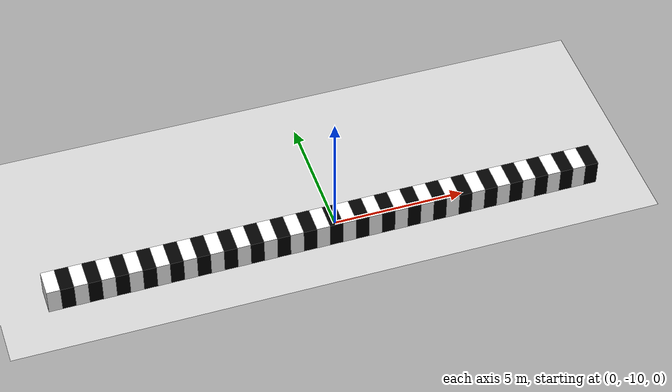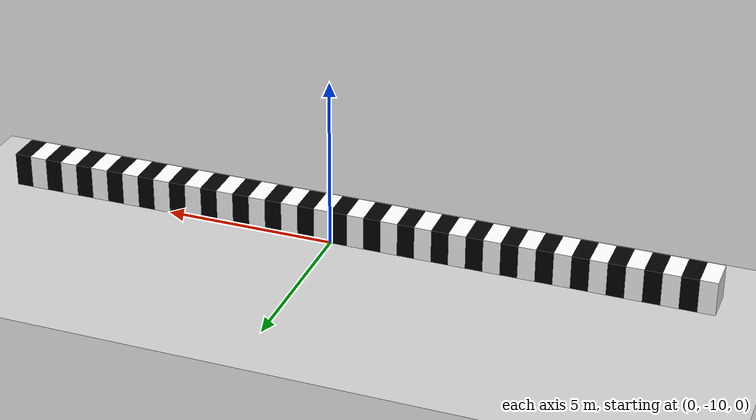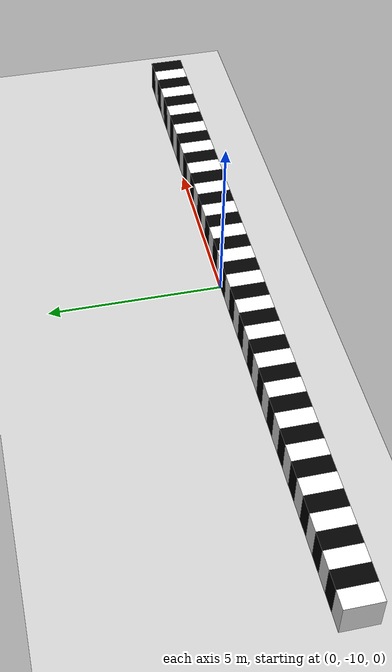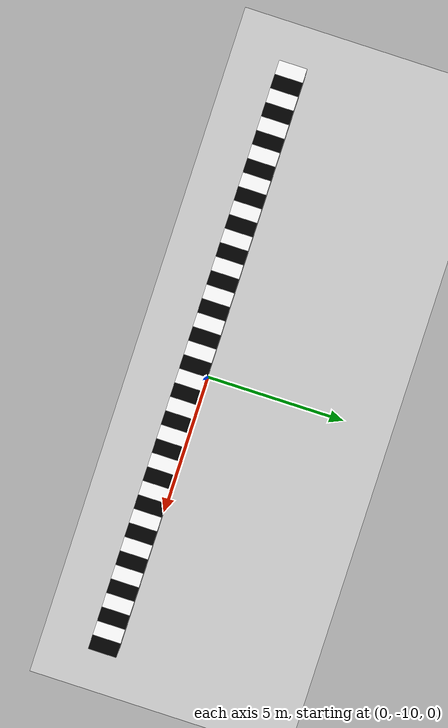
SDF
<sdf version="1.9">
 <world name="default">
  <model name="ground_plane">
   <static>true</static>
   <link name="link">
    <collision name="collision">
     <geometry><plane><normal>0 0 1</normal><size>100 100</size></plane></geometry>
    </collision>
    <visual name="visual">
     <geometry><plane><normal>0 0 1</normal><size>100 100</size></plane></geometry>
     <material>
      <ambient>0.8 0.8 0.8 1</ambient>
      <diffuse>0.8 0.8 0.8 1</diffuse>
      <specular>0.8 0.8 0.8 1</specular>
     </material>
    </visual>
   </link>
  </model>
  <model name="wall2">
   <static>true</static>
   <link name="link">
    <collision name="collision1">
     <geometry>
      <polyline>
       <point>10 -10</point>
       <point>10 -11</point>
       <point>-11 -11</point>
       <point>-11 -10</point>
       <height>1</height>
      </polyline>
     </geometry>
    </collision>
    <visual name="s1">
     <pose>-10.75 -10.5 0.5 0 0 0</pose>
     <geometry><box><size>0.5 1 1</size></box></geometry>
     <material><ambient>1 1 1 1</ambient><diffuse>1 1 1 1</diffuse></material>
    </visual>
    <visual name="s2">
     <pose>-10.25 -10.5 0.5 0 0 0</pose>
     <geometry><box><size>0.5 1 1</size></box></geometry>
     <material><ambient>0 0 0 1</ambient><diffuse>0 0 0 1</diffuse></material>
    </visual>
    <visual name="s3">
     <pose>-9.75 -10.5 0.5 0 0 0</pose>
     <geometry><box><size>0.5 1 1</size></box></geometry>
     <material><ambient>1 1 1 1</ambient><diffuse>1 1 1 1</diffuse></material>
    </visual>
    <visual name="s4">
     <pose>-9.25 -10.5 0.5 0 0 0</pose>
     <geometry><box><size>0.5 1 1</size></box></geometry>
     <material><ambient>0 0 0 1</ambient><diffuse>0 0 0 1</diffuse></material>
    </visual>
    <visual name="s5">
     <pose>-8.75 -10.5 0.5 0 0 0</pose>
     <geometry><box><size>0.5 1 1</size></box></geometry>
     <material><ambient>1 1 1 1</ambient><diffuse>1 1 1 1</diffuse></material>
    </visual>
    <visual name="s6">
     <pose>-8.25 -10.5 0.5 0 0 0</pose>
     <geometry><box><size>0.5 1 1</size></box></geometry>
     <material><ambient>0 0 0 1</ambient><diffuse>0 0 0 1</diffuse></material>
    </visual>
    <visual name="s7">
     <pose>-7.75 -10.5 0.5 0 0 0</pose>
     <geometry><box><size>0.5 1 1</size></box></geometry>
     <material><ambient>1 1 1 1</ambient><diffuse>1 1 1 1</diffuse></material>
    </visual>
    <visual name="s8">
     <pose>-7.25 -10.5 0.5 0 0 0</pose>
     <geometry><box><size>0.5 1 1</size></box></geometry>
     <material><ambient>0 0 0 1</ambient><diffuse>0 0 0 1</diffuse></material>
    </visual>
    <visual name="s9">
     <pose>-6.75 -10.5 0.5 0 0 0</pose>
     <geometry><box><size>0.5 1 1</size></box></geometry>
     <material><ambient>1 1 1 1</ambient><diffuse>1 1 1 1</diffuse></material>
    </visual>
    <visual name="s10">
     <pose>-6.25 -10.5 0.5 0 0 0</pose>
     <geometry><box><size>0.5 1 1</size></box></geometry>
     <material><ambient>0 0 0 1</ambient><diffuse>0 0 0 1</diffuse></material>
    </visual>
    <visual name="s11">
     <pose>-5.75 -10.5 0.5 0 0 0</pose>
     <geometry><box><size>0.5 1 1</size></box></geometry>
     <material><ambient>1 1 1 1</ambient><diffuse>1 1 1 1</diffuse></material>
    </visual>
    <visual name="s12">
     <pose>-5.25 -10.5 0.5 0 0 0</pose>
     <geometry><box><size>0.5 1 1</size></box></geometry>
     <material><ambient>0 0 0 1</ambient><diffuse>0 0 0 1</diffuse></material>
    </visual>
    <visual name="s13">
     <pose>-4.75 -10.5 0.5 0 0 0</pose>
     <geometry><box><size>0.5 1 1</size></box></geometry>
     <material><ambient>1 1 1 1</ambient><diffuse>1 1 1 1</diffuse></material>
    </visual>
    <visual name="s14">
     <pose>-4.25 -10.5 0.5 0 0 0</pose>
     <geometry><box><size>0.5 1 1</size></box></geometry>
     <material><ambient>0 0 0 1</ambient><diffuse>0 0 0 1</diffuse></material>
    </visual>
    <visual name="s15">
     <pose>-3.75 -10.5 0.5 0 0 0</pose>
     <geometry><box><size>0.5 1 1</size></box></geometry>
     <material><ambient>1 1 1 1</ambient><diffuse>1 1 1 1</diffuse></material>
    </visual>
    <visual name="s16">
     <pose>-3.25 -10.5 0.5 0 0 0</pose>
     <geometry><box><size>0.5 1 1</size></box></geometry>
     <material><ambient>0 0 0 1</ambient><diffuse>0 0 0 1</diffuse></material>
    </visual>
    <visual name="s17">
     <pose>-2.75 -10.5 0.5 0 0 0</pose>
     <geometry><box><size>0.5 1 1</size></box></geometry>
     <material><ambient>1 1 1 1</ambient><diffuse>1 1 1 1</diffuse></material>
    </visual>
    <visual name="s18">
     <pose>-2.25 -10.5 0.5 0 0 0</pose>
     <geometry><box><size>0.5 1 1</size></box></geometry>
     <material><ambient>0 0 0 1</ambient><diffuse>0 0 0 1</diffuse></material>
    </visual>
    <visual name="s19">
     <pose>-1.75 -10.5 0.5 0 0 0</pose>
     <geometry><box><size>0.5 1 1</size></box></geometry>
     <material><ambient>1 1 1 1</ambient><diffuse>1 1 1 1</diffuse></material>
    </visual>
    <visual name="s20">
     <pose>-1.25 -10.5 0.5 0 0 0</pose>
     <geometry><box><size>0.5 1 1</size></box></geometry>
     <material><ambient>0 0 0 1</ambient><diffuse>0 0 0 1</diffuse></material>
    </visual>
    <visual name="s21">
     <pose>-0.75 -10.5 0.5 0 0 0</pose>
     <geometry><box><size>0.5 1 1</size></box></geometry>
     <material><ambient>1 1 1 1</ambient><diffuse>1 1 1 1</diffuse></material>
    </visual>
    <visual name="s22">
     <pose>-0.25 -10.5 0.5 0 0 0</pose>
     <geometry><box><size>0.5 1 1</size></box></geometry>
     <material><ambient>0 0 0 1</ambient><diffuse>0 0 0 1</diffuse></material>
    </visual>
    <visual name="s23">
     <pose>0.25 -10.5 0.5 0 0 0</pose>
     <geometry><box><size>0.5 1 1</size></box></geometry>
     <material><ambient>1 1 1 1</ambient><diffuse>1 1 1 1</diffuse></material>
    </visual>
    <visual name="s24">
     <pose>0.75 -10.5 0.5 0 0 0</pose>
     <geometry><box><size>0.5 1 1</size></box></geometry>
     <material><ambient>0 0 0 1</ambient><diffuse>0 0 0 1</diffuse></material>
    </visual>
    <visual name="s25">
     <pose>1.25 -10.5 0.5 0 0 0</pose>
     <geometry><box><size>0.5 1 1</size></box></geometry>
     <material><ambient>1 1 1 1</ambient><diffuse>1 1 1 1</diffuse></material>
    </visual>
    <visual name="s26">
     <pose>1.75 -10.5 0.5 0 0 0</pose>
     <geometry><box><size>0.5 1 1</size></box></geometry>
     <material><ambient>0 0 0 1</ambient><diffuse>0 0 0 1</diffuse></material>
    </visual>
    <visual name="s27">
     <pose>2.25 -10.5 0.5 0 0 0</pose>
     <geometry><box><size>0.5 1 1</size></box></geometry>
     <material><ambient>1 1 1 1</ambient><diffuse>1 1 1 1</diffuse></material>
    </visual>
    <visual name="s28">
     <pose>2.75 -10.5 0.5 0 0 0</pose>
     <geometry><box><size>0.5 1 1</size></box></geometry>
     <material><ambient>0 0 0 1</ambient><diffuse>0 0 0 1</diffuse></material>
    </visual>
    <visual name="s29">
     <pose>3.25 -10.5 0.5 0 0 0</pose>
     <geometry><box><size>0.5 1 1</size></box></geometry>
     <material><ambient>1 1 1 1</ambient><diffuse>1 1 1 1</diffuse></material>
    </visual>
    <visual name="s30">
     <pose>3.75 -10.5 0.5 0 0 0</pose>
     <geometry><box><size>0.5 1 1</size></box></geometry>
     <material><ambient>0 0 0 1</ambient><diffuse>0 0 0 1</diffuse></material>
    </visual>
    <visual name="s31">
     <pose>4.25 -10.5 0.5 0 0 0</pose>
     <geometry><box><size>0.5 1 1</size></box></geometry>
     <material><ambient>1 1 1 1</ambient><diffuse>1 1 1 1</diffuse></material>
    </visual>
    <visual name="s32">
     <pose>4.75 -10.5 0.5 0 0 0</pose>
     <geometry><box><size>0.5 1 1</size></box></geometry>
     <material><ambient>0 0 0 1</ambient><diffuse>0 0 0 1</diffuse></material>
    </visual>
    <visual name="s33">
     <pose>5.25 -10.5 0.5 0 0 0</pose>
     <geometry><box><size>0.5 1 1</size></box></geometry>
     <material><ambient>1 1 1 1</ambient><diffuse>1 1 1 1</diffuse></material>
    </visual>
    <visual name="s34">
     <pose>5.75 -10.5 0.5 0 0 0</pose>
     <geometry><box><size>0.5 1 1</size></box></geometry>
     <material><ambient>0 0 0 1</ambient><diffuse>0 0 0 1</diffuse></material>
    </visual>
    <visual name="s35">
     <pose>6.25 -10.5 0.5 0 0 0</pose>
     <geometry><box><size>0.5 1 1</size></box></geometry>
     <material><ambient>1 1 1 1</ambient><diffuse>1 1 1 1</diffuse></material>
    </visual>
    <visual name="s36">
     <pose>6.75 -10.5 0.5 0 0 0</pose>
     <geometry><box><size>0.5 1 1</size></box></geometry>
     <material><ambient>0 0 0 1</ambient><diffuse>0 0 0 1</diffuse></material>
    </visual>
    <visual name="s37">
     <pose>7.25 -10.5 0.5 0 0 0</pose>
     <geometry><box><size>0.5 1 1</size></box></geometry>
     <material><ambient>1 1 1 1</ambient><diffuse>1 1 1 1</diffuse></material>
    </visual>
    <visual name="s38">
     <pose>7.75 -10.5 0.5 0 0 0</pose>
     <geometry><box><size>0.5 1 1</size></box></geometry>
     <material><ambient>0 0 0 1</ambient><diffuse>0 0 0 1</diffuse></material>
    </visual>
    <visual name="s39">
     <pose>8.25 -10.5 0.5 0 0 0</pose>
     <geometry><box><size>0.5 1 1</size></box></geometry>
     <material><ambient>1 1 1 1</ambient><diffuse>1 1 1 1</diffuse></material>
    </visual>
    <visual name="s40">
     <pose>8.75 -10.5 0.5 0 0 0</pose>
     <geometry><box><size>0.5 1 1</size></box></geometry>
     <material><ambient>0 0 0 1</ambient><diffuse>0 0 0 1</diffuse></material>
    </visual>
    <visual name="s41">
     <pose>9.25 -10.5 0.5 0 0 0</pose>
     <geometry><box><size>0.5 1 1</size></box></geometry>
     <material><ambient>1 1 1 1</ambient><diffuse>1 1 1 1</diffuse></material>
    </visual>
    <visual name="s42">
     <pose>9.75 -10.5 0.5 0 0 0</pose>
     <geometry><box><size>0.5 1 1</size></box></geometry>
     <material><ambient>0 0 0 1</ambient><diffuse>0 0 0 1</diffuse></material>
    </visual>
   </link>
  </model>
 </world>
</sdf>
